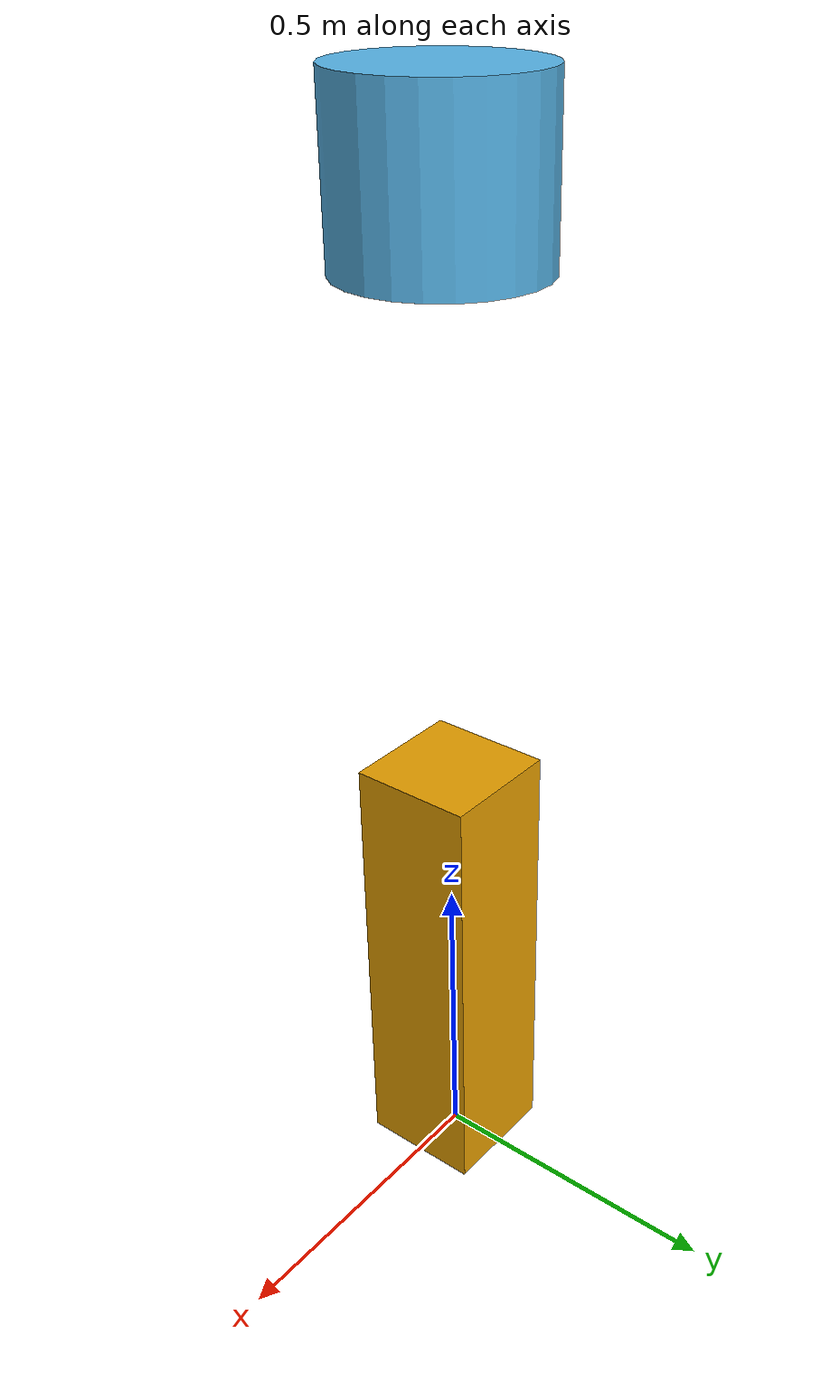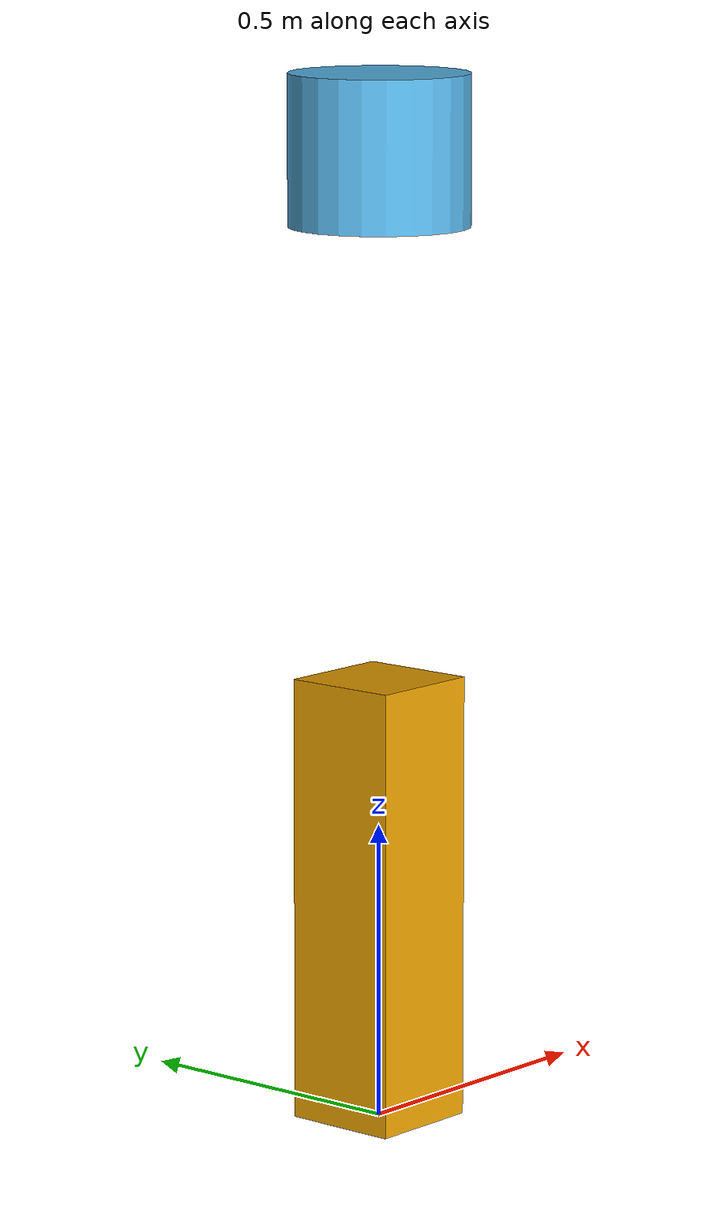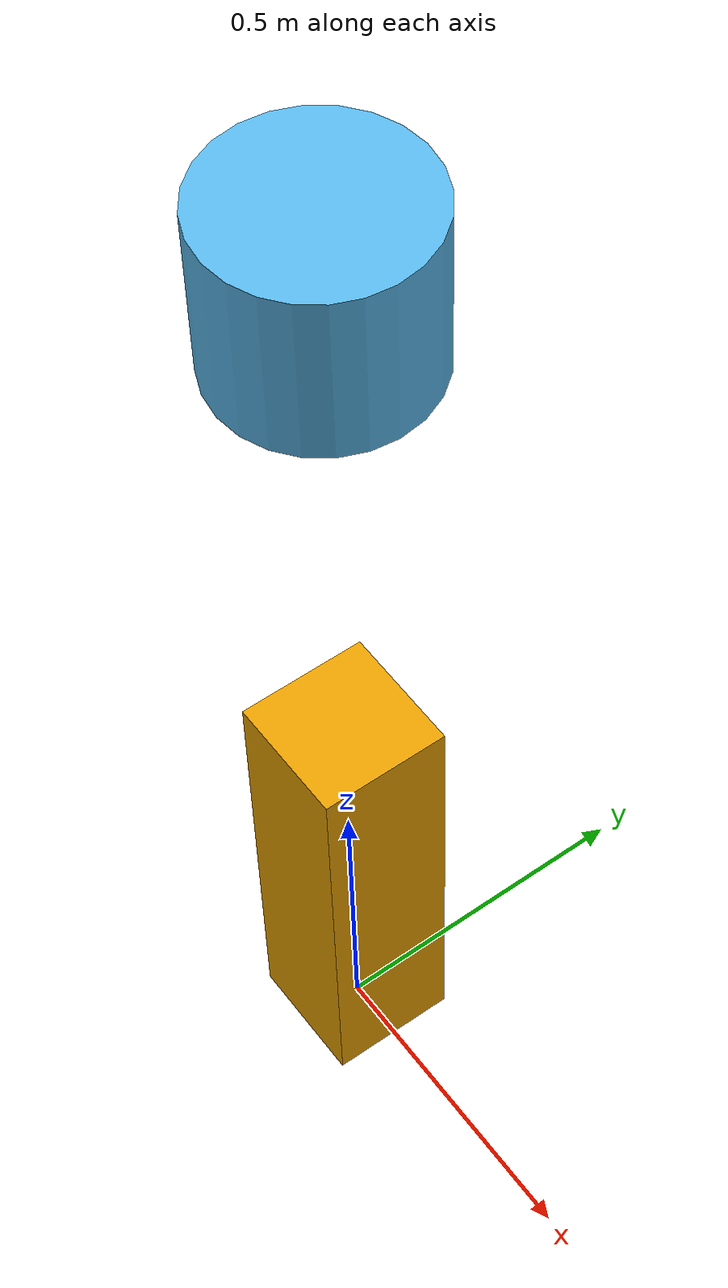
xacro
<?xml version="1.0" ?>

<robot name="joebot" xmlns:xacro="http://www.ros.org/wiki/xacro">
	<link name="base_link">
		<visual>
			<origin xyz="0 0 0.375" rpy="0 0 0" />
			<geometry>
				<box size="0.2 0.2 0.75" />
			</geometry>
		</visual>
	</link>

	<joint name="base_link__link_1" type="revolute">
		<axis xyz="0 0 1" />
		<limit effort="1000.0" lower="-3.14" upper="3.14" velocity="0.5" />
		<origin xyz="0 0 0.75" />
		<parent link="base_link" />
		<child link="link_1" />
	</joint>

	<link name="link_1">
		<visual>
			<origin xyz="0 0 0.875" rpy="0 0 0" />
			<geometry>
				<cylinder radius="0.15" length="0.25" />
			</geometry>
		</visual>
	</link>
</robot>
